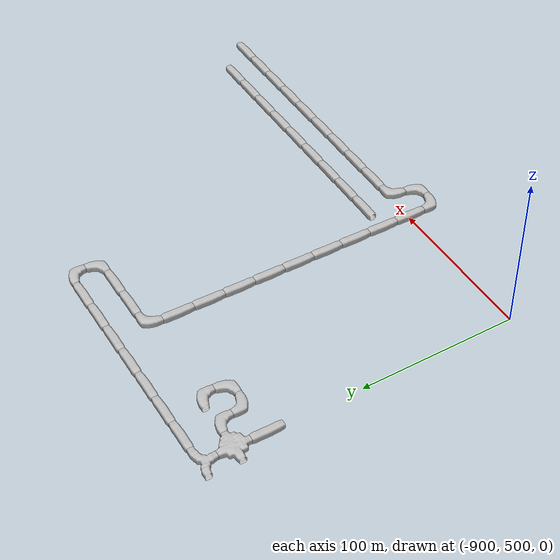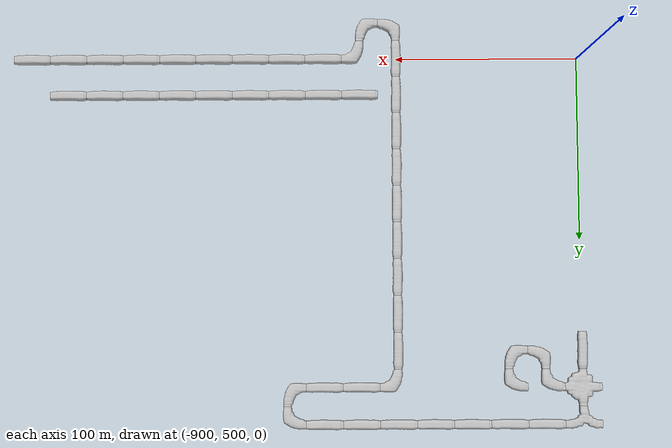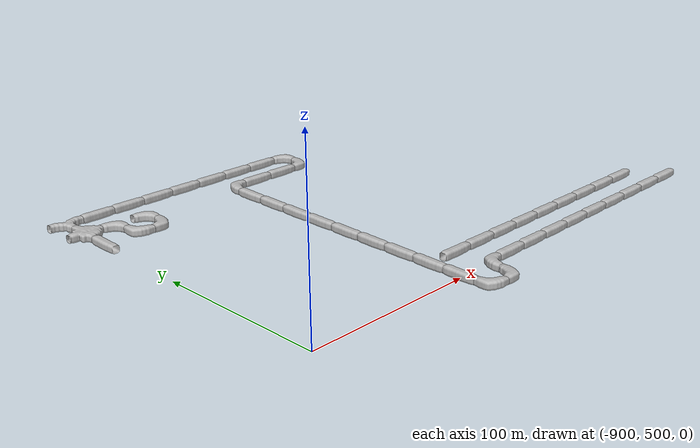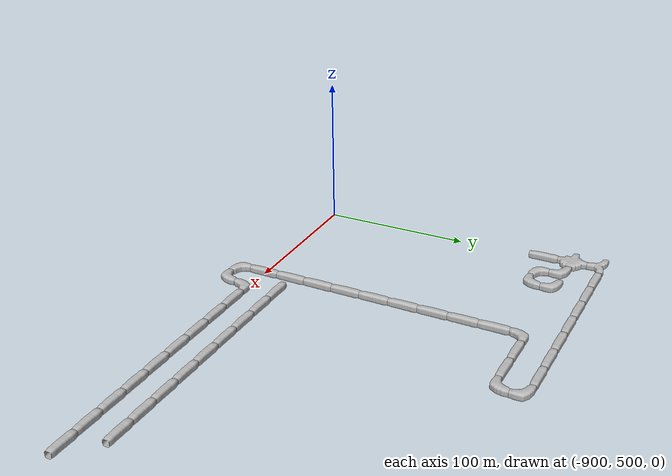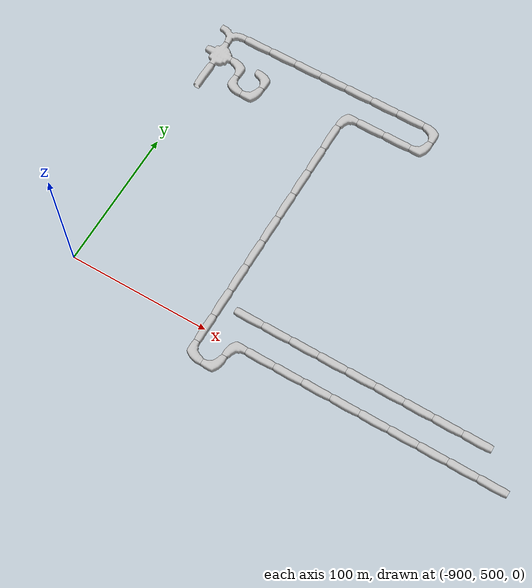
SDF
<sdf version="1.6">
 <world name="cave_16000_8">
  <include>
   <static>true</static>
   <name>cave_-31_26</name>
   <pose>-620 520 0 0 0 1.5707963267948966</pose>
   <uri>model://cave_straight_20m</uri>
  </include>
  <include>
   <static>true</static>
   <name>cave_-32_26</name>
   <pose>-640 520 0 0 0 1.5707963267948966</pose>
   <uri>model://cave_straight_20m</uri>
  </include>
  <include>
   <static>true</static>
   <name>cave_-33_26</name>
   <pose>-660 520 0 0 0 1.5707963267948966</pose>
   <uri>model://cave_straight_20m</uri>
  </include>
  <include>
   <static>true</static>
   <name>cave_-34_26</name>
   <pose>-680 520 0 0 0 1.5707963267948966</pose>
   <uri>model://cave_straight_20m</uri>
  </include>
  <include>
   <static>true</static>
   <name>cave_-35_26</name>
   <pose>-700 520 0 0 0 1.5707963267948966</pose>
   <uri>model://cave_straight_20m</uri>
  </include>
  <include>
   <static>true</static>
   <name>cave_-36_26</name>
   <pose>-720 520 0 0 0 1.5707963267948966</pose>
   <uri>model://cave_straight_20m</uri>
  </include>
  <include>
   <static>true</static>
   <name>cave_-37_26</name>
   <pose>-740 520 0 0 0 1.5707963267948966</pose>
   <uri>model://cave_straight_20m</uri>
  </include>
  <include>
   <static>true</static>
   <name>cave_-38_26</name>
   <pose>-760 520 0 0 0 1.5707963267948966</pose>
   <uri>model://cave_straight_20m</uri>
  </include>
  <include>
   <static>true</static>
   <name>cave_-39_26</name>
   <pose>-780 520 0 0 0 1.5707963267948966</pose>
   <uri>model://cave_straight_20m</uri>
  </include>
  <include>
   <static>true</static>
   <name>cave_-30_25</name>
   <pose>-600 500 0 0 0 1.5707963267948966</pose>
   <uri>model://cave_straight_20m</uri>
  </include>
  <include>
   <static>true</static>
   <name>cave_-31_25</name>
   <pose>-620 500 0 0 0 1.5707963267948966</pose>
   <uri>model://cave_straight_20m</uri>
  </include>
  <include>
   <static>true</static>
   <name>cave_-32_25</name>
   <pose>-640 500 0 0 0 1.5707963267948966</pose>
   <uri>model://cave_straight_20m</uri>
  </include>
  <include>
   <static>true</static>
   <name>cave_-33_25</name>
   <pose>-660 500 0 0 0 1.5707963267948966</pose>
   <uri>model://cave_straight_20m</uri>
  </include>
  <include>
   <static>true</static>
   <name>cave_-34_25</name>
   <pose>-680 500 0 0 0 1.5707963267948966</pose>
   <uri>model://cave_straight_20m</uri>
  </include>
  <include>
   <static>true</static>
   <name>cave_-35_25</name>
   <pose>-700 500 0 0 0 1.5707963267948966</pose>
   <uri>model://cave_straight_20m</uri>
  </include>
  <include>
   <static>true</static>
   <name>cave_-36_25</name>
   <pose>-720 500 0 0 0 1.5707963267948966</pose>
   <uri>model://cave_straight_20m</uri>
  </include>
  <include>
   <static>true</static>
   <name>cave_-37_25</name>
   <pose>-740 500 0 0 0 1.5707963267948966</pose>
   <uri>model://cave_straight_20m</uri>
  </include>
  <include>
   <static>true</static>
   <name>cave_-38_25</name>
   <pose>-760 500 0 0 0 1.5707963267948966</pose>
   <uri>model://cave_straight_20m</uri>
  </include>
  <include>
   <static>true</static>
   <name>cave_-39_25</name>
   <pose>-780 500 0 0 0 -1.5707963267948966</pose>
   <uri>model://cave_L_20m</uri>
  </include>
  <include>
   <static>true</static>
   <name>cave_-39_24</name>
   <pose>-780 480 0 0 0 1.5707963267948966</pose>
   <uri>model://cave_L_20m</uri>
  </include>
  <include>
   <static>true</static>
   <name>cave_-40_24</name>
   <pose>-800 480 0 0 0 0.0</pose>
   <uri>model://cave_L_20m</uri>
  </include>
  <include>
   <static>true</static>
   <name>cave_-40_25</name>
   <pose>-800 500 0 0 0 0.0</pose>
   <uri>model://cave_straight_20m</uri>
  </include>
  <include>
   <static>true</static>
   <name>cave_-40_26</name>
   <pose>-800 520 0 0 0 0.0</pose>
   <uri>model://cave_straight_20m</uri>
  </include>
  <include>
   <static>true</static>
   <name>cave_-40_27</name>
   <pose>-800 540 0 0 0 0.0</pose>
   <uri>model://cave_straight_20m</uri>
  </include>
  <include>
   <static>true</static>
   <name>cave_-40_28</name>
   <pose>-800 560 0 0 0 0.0</pose>
   <uri>model://cave_straight_20m</uri>
  </include>
  <include>
   <static>true</static>
   <name>cave_-40_29</name>
   <pose>-800 580 0 0 0 0.0</pose>
   <uri>model://cave_straight_20m</uri>
  </include>
  <include>
   <static>true</static>
   <name>cave_-40_30</name>
   <pose>-800 600 0 0 0 0.0</pose>
   <uri>model://cave_straight_20m</uri>
  </include>
  <include>
   <static>true</static>
   <name>cave_-40_31</name>
   <pose>-800 620 0 0 0 0.0</pose>
   <uri>model://cave_straight_20m</uri>
  </include>
  <include>
   <static>true</static>
   <name>cave_-40_32</name>
   <pose>-800 640 0 0 0 0.0</pose>
   <uri>model://cave_straight_20m</uri>
  </include>
  <include>
   <static>true</static>
   <name>cave_-40_33</name>
   <pose>-800 660 0 0 0 0.0</pose>
   <uri>model://cave_straight_20m</uri>
  </include>
  <include>
   <static>true</static>
   <name>cave_-40_34</name>
   <pose>-800 680 0 0 0 -1.5707963267948966</pose>
   <uri>model://cave_L_20m</uri>
  </include>
  <include>
   <static>true</static>
   <name>cave_-39_34</name>
   <pose>-780 680 0 0 0 1.5707963267948966</pose>
   <uri>model://cave_straight_20m</uri>
  </include>
  <include>
   <static>true</static>
   <name>cave_-38_34</name>
   <pose>-760 680 0 0 0 1.5707963267948966</pose>
   <uri>model://cave_straight_20m</uri>
  </include>
  <include>
   <static>true</static>
   <name>cave_-37_34</name>
   <pose>-740 680 0 0 0 1.5707963267948966</pose>
   <uri>model://cave_L_20m</uri>
  </include>
  <include>
   <static>true</static>
   <name>cave_-37_35</name>
   <pose>-740 700 0 0 0 3.141592653589793</pose>
   <uri>model://cave_L_20m</uri>
  </include>
  <include>
   <static>true</static>
   <name>cave_-38_35</name>
   <pose>-760 700 0 0 0 1.5707963267948966</pose>
   <uri>model://cave_straight_20m</uri>
  </include>
  <include>
   <static>true</static>
   <name>cave_-39_35</name>
   <pose>-780 700 0 0 0 1.5707963267948966</pose>
   <uri>model://cave_straight_20m</uri>
  </include>
  <include>
   <static>true</static>
   <name>cave_-40_35</name>
   <pose>-800 700 0 0 0 1.5707963267948966</pose>
   <uri>model://cave_straight_20m</uri>
  </include>
  <include>
   <static>true</static>
   <name>cave_-41_35</name>
   <pose>-820 700 0 0 0 1.5707963267948966</pose>
   <uri>model://cave_straight_20m</uri>
  </include>
  <include>
   <static>true</static>
   <name>cave_-42_35</name>
   <pose>-840 700 0 0 0 1.5707963267948966</pose>
   <uri>model://cave_straight_20m</uri>
  </include>
  <include>
   <static>true</static>
   <name>cave_-43_35</name>
   <pose>-860 700 0 0 0 1.5707963267948966</pose>
   <uri>model://cave_straight_20m</uri>
  </include>
  <include>
   <static>true</static>
   <name>cave_-44_35</name>
   <pose>-880 700 0 0 0 1.5707963267948966</pose>
   <uri>model://cave_straight_20m</uri>
  </include>
  <include>
   <static>true</static>
   <name>cave_-45_35</name>
   <pose>-900 700 0 0 0 3.141592653589793</pose>
   <uri>model://cave_3way_20m</uri>
  </include>
  <include>
   <static>true</static>
   <name>cave_-45_34</name>
   <pose>-900 680 0 0 0 -1.5707963267948966</pose>
   <uri>model://cave_4way_20m</uri>
  </include>
  <include>
   <static>true</static>
   <name>cave_-44_34</name>
   <pose>-880 680 0 0 0 3.141592653589793</pose>
   <uri>model://cave_L_20m</uri>
  </include>
  <include>
   <static>true</static>
   <name>cave_-44_33</name>
   <pose>-880 660 0 0 0 0.0</pose>
   <uri>model://cave_L_20m</uri>
  </include>
  <include>
   <static>true</static>
   <name>cave_-43_33</name>
   <pose>-860 660 0 0 0 1.5707963267948966</pose>
   <uri>model://cave_L_20m</uri>
  </include>
  <include>
   <static>true</static>
   <name>cave_-43_34</name>
   <pose>-860 680 0 0 0 3.141592653589793</pose>
   <uri>model://cave_L_20m</uri>
  </include>
  <include>
   <static>true</static>
   <name>cave_-45_33</name>
   <pose>-900 660 0 0 0 0.0</pose>
   <uri>model://cave_straight_20m</uri>
  </include>
 </world>
</sdf>
